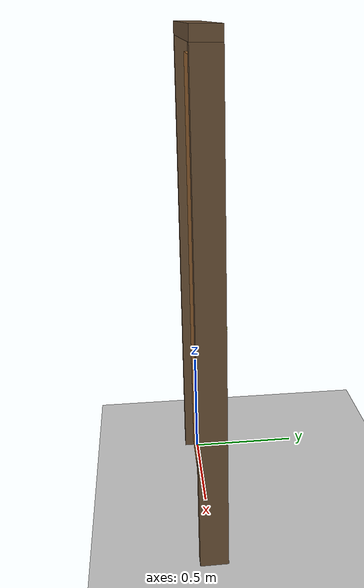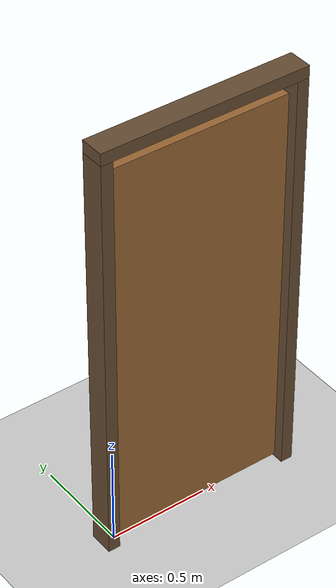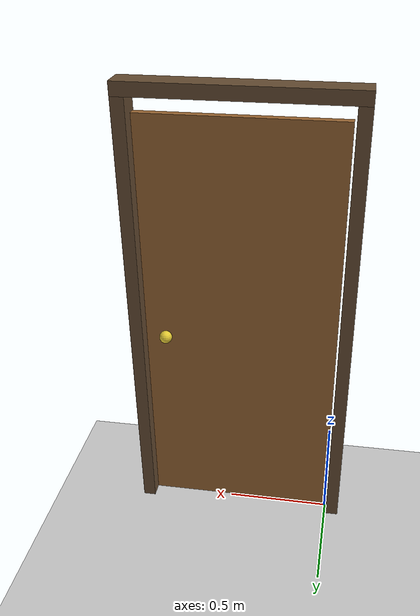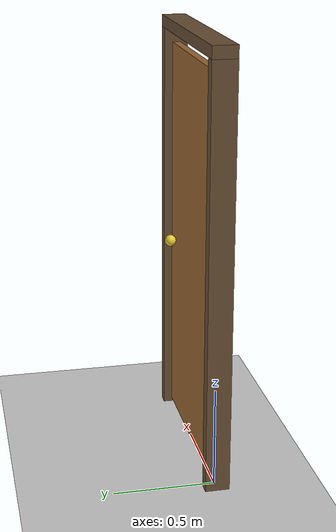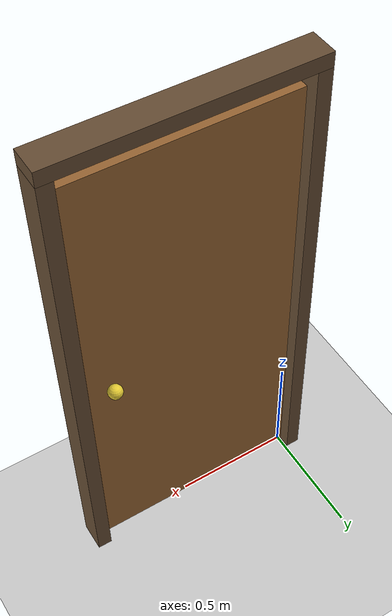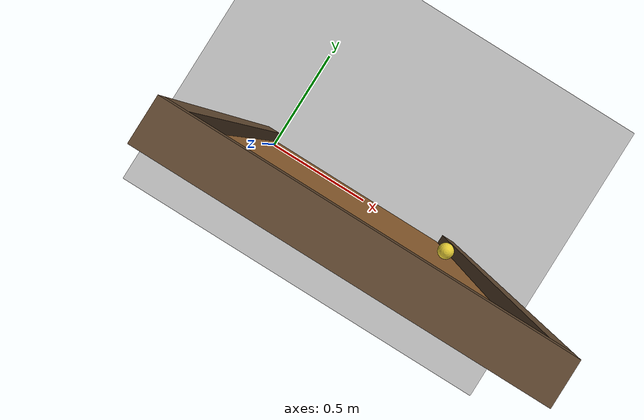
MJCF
<mujoco model="self_closing_door">
  <compiler angle="radian"/>
  <option timestep="0.002"/>
  <worldbody>
    <light name="sun" pos="0 0 4" dir="0 0 -1" diffuse="0.8 0.8 0.8"/>
    <geom name="floor" type="plane" size="5 5 0.1" rgba="0.8 0.8 0.8 1"/>
    <geom name="jamb_hinge_side" type="box" pos="-0.04 0 1.05" size="0.03 0.06 1.05" contype="0" conaffinity="0" rgba="0.4 0.3 0.2 1"/>
    <geom name="jamb_latch_side" type="box" pos="0.94 0 1.05" size="0.03 0.06 1.05" contype="0" conaffinity="0" rgba="0.4 0.3 0.2 1"/>
    <geom name="lintel" type="box" pos="0.45 0 2.13" size="0.52 0.06 0.03" contype="0" conaffinity="0" rgba="0.4 0.3 0.2 1"/>
    <body name="door" pos="0 0 0">
      <joint name="hinge" type="hinge" axis="0 0 1" pos="0 0 0" limited="true" range="0 1.6" stiffness="40" springref="-0.2" damping="15"/>
      <geom name="door_panel" type="box" pos="0.45 0 1.03" size="0.45 0.02 1.0" density="1000" rgba="0.6 0.4 0.2 1"/>
      <geom name="door_knob" type="sphere" pos="0.8 0.05 1.0" size="0.03" density="500" rgba="0.9 0.8 0.2 1"/>
    </body>
  </worldbody>
  <keyframe>
    <key name="start" qpos="1.4" qvel="0"/>
  </keyframe>
</mujoco>
